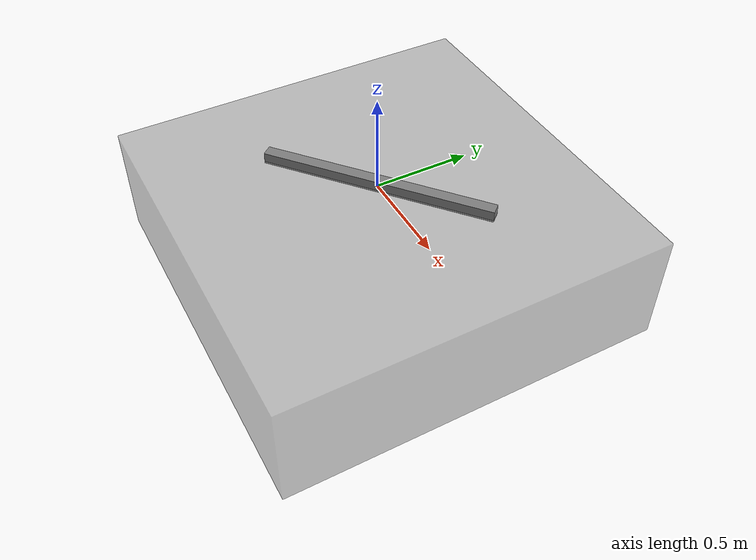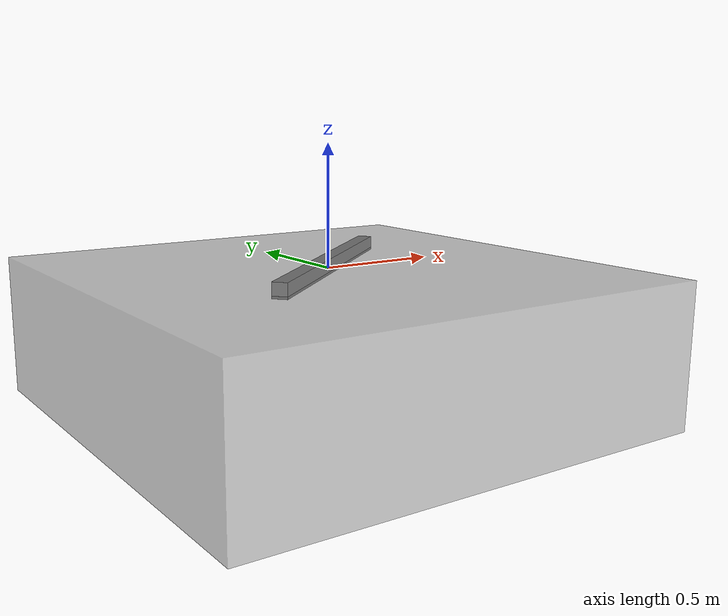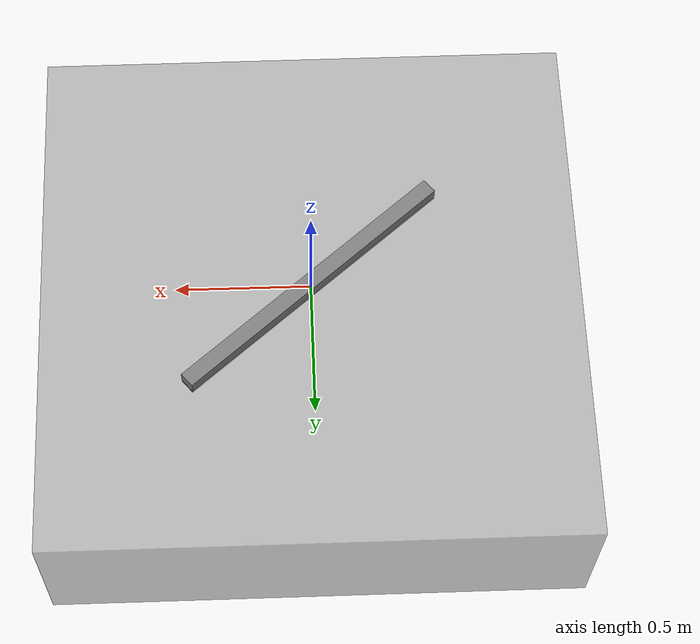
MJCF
<mujoco>
  <option>
    <flag multiccd="enable"/>
  </option>

  <visual>
    <quality shadowsize="8192"/>
    <scale forcewidth="0.01" contactwidth="0.05" contactheight="0.05"/>
    <map force="0.1"/>
  </visual>

  <asset>
    <mesh name="long_box" vertex="-1 -1 -1 1 -1 -1 1 1 -1 1 1 1 1 -1 1 -1 1 -1 -1 1 1 -1 -1 1"
          scale=".6 .03 .03"/>
  </asset>

  <worldbody>
    <light pos="0 0 1"/>
    <geom type="box" size="1 1 .3" pos="0 0 -.3" rgba=".5 .5 .5 .5"/>
    <body pos="0 0 .02" euler="0 0 40">
      <freejoint/>
      <geom type="mesh" mesh="long_box"/>
    </body>
  </worldbody>
</mujoco>
